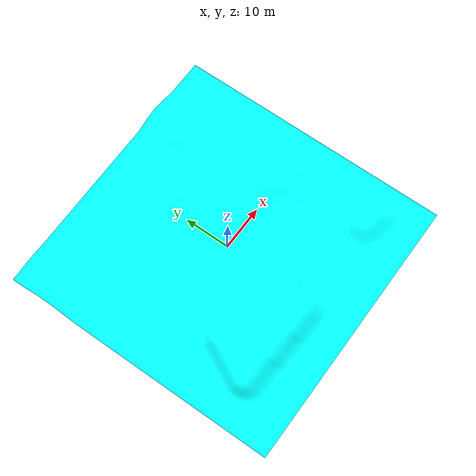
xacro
<?xml version="1.0"?>
<robot name="terrain" xmlns:xacro="http://ros.org/wiki/xacro">
<xacro:arg name="mesh_name" default="terrain.stl"/>
<xacro:arg name="terrain_scale_x" default="1"/>
<xacro:arg name="terrain_scale_y" default="1"/>
<xacro:arg name="terrain_scale_z" default="1"/>
<xacro:arg name="terrain_pos_x" default="0"/>
<xacro:arg name="terrain_pos_y" default="0"/>
<xacro:arg name="terrain_pos_z" default="0"/>

 <material name="White">
    <color rgba="${0/255} ${0/255} ${0/255} 1.0"/>
  </material>

 <material name="Black">
    <color rgba="${0/255} ${0/255} ${0/255} 1.0"/>
  </material>

 <material name="Red">
    <color rgba="${255/255} ${100/255} ${0/255} 1.0"/>
  </material>

 <material name="Brown">
    <color rgba="${198/255} ${94/255} ${42/255} 1.0"/>
  </material>

 <material name="DarkBrown">
    <color rgba="${144/255} ${68/255} ${30/255} 1.0"/>
  </material>

<material name="orange">
  <color rgba="0.8 0.4 0.0 1.0"/>
</material>

<link name="terrain">
	<inertial>
		<mass value="10"/>
		<inertia ixx="0.4" ixy="0.0" ixz="0.0" iyy="0.4" iyz="0.0" izz="0.2"/>
	</inertial>

	<visual > <!-- dont put name otherwise gazebo discards color-->
		<origin xyz="$(arg terrain_pos_x) $(arg terrain_pos_y) $(arg terrain_pos_z)" rpy="0 0 0"/>
		<geometry>
	                  <mesh filename="package://tractor_description/meshes/$(arg mesh_name)" scale="$(arg terrain_scale_x) $(arg terrain_scale_y) $(arg terrain_scale_z)"/>
	        </geometry>
		 <material name="Cyan">
         		<color rgba="0 1.0 1.0 1.0"/>
  	    	</material>

	</visual>

	<collision>
	<origin xyz="$(arg terrain_pos_x) $(arg terrain_pos_y) $(arg terrain_pos_z)" rpy="0 0 0"/>
	<geometry>
	                  <mesh filename="package://tractor_description/meshes/$(arg mesh_name)" scale="$(arg terrain_scale_x) $(arg terrain_scale_y) $(arg terrain_scale_z)"/>
	</geometry>

	</collision>

</link>

<gazebo reference="terrain">
    <visual>
        <material>White</material>
       </visual>
  </gazebo>

<gazebo>
    <static>true</static>
</gazebo>

 <!--one of this /usr/share/gazebo-11/media/materials/scripts/gazebo.material   is for gazebo -->

</robot>
